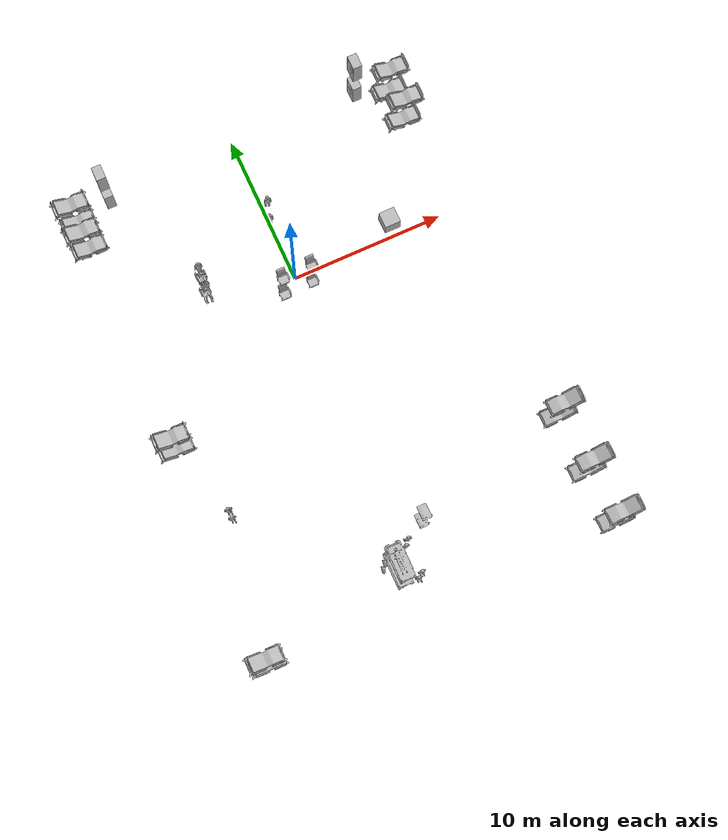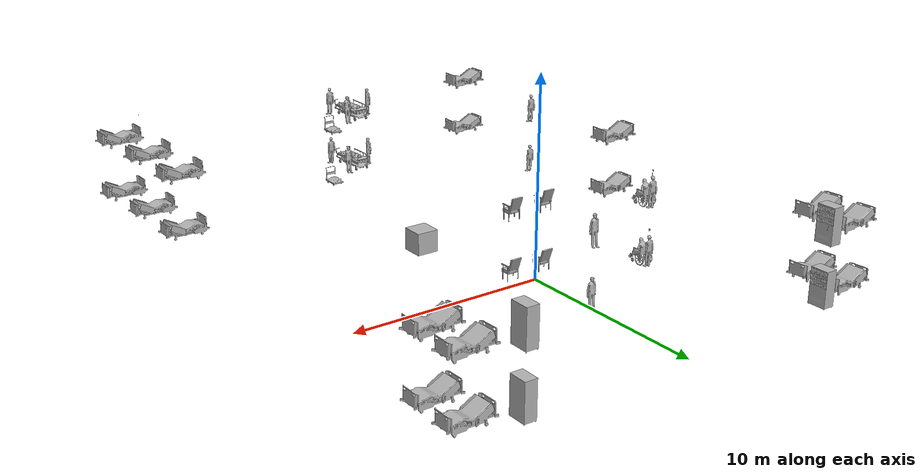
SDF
<sdf version="1.6">
 <world name="world">
  <gravity>0 0 -9.8</gravity>
  <physics default="0" name="default_physics" type="ode">
   <max_step_size>0.001</max_step_size>
   <real_time_factor>1</real_time_factor>
   <real_time_update_rate>1000</real_time_update_rate>
  </physics>
  <model name="CGMClassic_1">
   <include><uri>model://CGMClassic</uri></include>
   <pose>11.1777 -18.4129 0 0 0 -1.5656</pose>
  </model>
  <model name="CGMClassic_2">
   <include><uri>model://CGMClassic</uri></include>
   <pose>11.1179 -14.6493 0 0 0 -1.5656</pose>
  </model>
  <model name="VisitorChair_1">
   <include><uri>model://VisitorChair</uri></include>
   <pose>-1.0052 -0.786961 0 0 -0 0</pose>
  </model>
  <model name="VisitorChair_2">
   <include><uri>model://VisitorChair</uri></include>
   <pose>0.899471 -0.744049 0 0 -0 0</pose>
  </model>
  <model name="OpScrubs_1">
   <include><uri>model://OpScrubs</uri></include>
   <pose>-9.61916 -12.5112 0 0 -0 0</pose>
  </model>
  <model name="OpScrubs_2">
   <include><uri>model://OpScrubs</uri></include>
   <pose>0.054597 4.05849 0 0 -0 3.12413</pose>
  </model>
  <model name="PatientWheelChair_1">
   <include><uri>model://PatientWheelChair</uri></include>
   <pose>-5.46091 1.23577 0 0 -0 0</pose>
  </model>
  <model name="OpScrubs_3">
   <include><uri>model://OpScrubs</uri></include>
   <pose>-5.38513 1.82526 0 0 -0 0</pose>
  </model>
  <model name="CGMClassic_3">
   <include><uri>model://CGMClassic</uri></include>
   <pose>-11.2304 -21.1134 0 0 -0 1.56641</pose>
  </model>
  <model name="CGMClassic_4">
   <include><uri>model://CGMClassic</uri></include>
   <pose>-11.0878 -7.00992 0 0 -0 1.56296</pose>
  </model>
  <model name="CGMClassic_5">
   <include><uri>model://CGMClassic</uri></include>
   <pose>-11.0106 8.9505 -0.008203 0.0004 -0.035019 1.56285</pose>
  </model>
  <model name="CGMClassic_6">
   <include><uri>model://CGMClassic</uri></include>
   <pose>-11.025 7.10335 0 0 -0.035021 1.57427</pose>
  </model>
  <model name="TrolleyBedPatient_1">
   <include><uri>model://TrolleyBedPatient</uri></include>
   <pose>-1.83202 -19.2612 0 0 -0 0</pose>
  </model>
  <model name="OpScrubs_4">
   <include><uri>model://OpScrubs</uri></include>
   <pose>-0.93616 -18.2252 0 0 0 -3.12479</pose>
  </model>
  <model name="OpScrubs_5">
   <include><uri>model://OpScrubs</uri></include>
   <pose>-2.66275 -18.9847 0 0 -0 1.57704</pose>
  </model>
  <model name="VendingMachine_1">
   <include><uri>model://VendingMachine</uri></include>
   <pose>-8.60588 9.57801 4.9e-05 0.000173 0 1.5708</pose>
  </model>
  <model name="VendingMachine_2">
   <include><uri>model://VendingMachine</uri></include>
   <pose>8.57644 9.83528 -1e-06 0 -1e-06 -1.5744</pose>
  </model>
  <model name="CGMClassic_7">
   <include><uri>model://CGMClassic</uri></include>
   <pose>10.6166 9.06291 -0.008203 0.0004 -0.035019 1.56285</pose>
  </model>
  <model name="CGMClassic_8">
   <include><uri>model://CGMClassic</uri></include>
   <pose>10.6006 6.90956 -0.008203 0.0004 -0.035019 1.56285</pose>
  </model>
  <model name="ParkingTrolleyMin_1">
   <include><uri>model://ParkingTrolleyMin</uri></include>
   <pose>0.715846 -17.1496 -0.000111 0 -0 0</pose>
  </model>
  <model name="OpScrubs_6">
   <include><uri>model://OpScrubs</uri></include>
   <pose>-0.947112 -20.3884 0 0 -0 0</pose>
  </model>
  <model name="CGMClassic_9">
   <include><uri>model://CGMClassic</uri></include>
   <pose>11.3613 -21.8867 0 0 0 -1.5656</pose>
  </model>
  <light name="ceiling_light_0" type="spot">
   <pose>-0.194533 13.8034 2.8 0 -0 0</pose>
   <diffuse>0.494118 0.494118 0.494118 1</diffuse>
   <specular>0.0941176 0.0941176 0.0941176 1</specular>
   <direction>0 0 -1</direction>
   <attenuation>
    <range>20</range>
    <constant>0.8</constant>
    <linear>0.1</linear>
    <quadratic>0.001</quadratic>
   </attenuation>
   <cast_shadows>0</cast_shadows>
   <spot><inner_angle>1.0</inner_angle><outer_angle>2.5</outer_angle><falloff>1</falloff></spot>
  </light>
  <light name="ceiling_light_1" type="spot">
   <pose>6.30005 8.9551 2.8 0 -0 0</pose>
   <diffuse>0.494118 0.494118 0.494118 1</diffuse>
   <specular>0.0941176 0.0941176 0.0941176 1</specular>
   <direction>0 0 -1</direction>
   <attenuation>
    <range>20</range>
    <constant>0.8</constant>
    <linear>0.1</linear>
    <quadratic>0.001</quadratic>
   </attenuation>
   <cast_shadows>0</cast_shadows>
   <spot><inner_angle>1.0</inner_angle><outer_angle>2.5</outer_angle><falloff>1</falloff></spot>
  </light>
  <light name="ceiling_light_2" type="spot">
   <pose>0.212387 2.1354 2.8 0 -0 0</pose>
   <diffuse>0.494118 0.494118 0.494118 1</diffuse>
   <specular>0.0941176 0.0941176 0.0941176 1</specular>
   <direction>0 0 -1</direction>
   <attenuation>
    <range>20</range>
    <constant>0.8</constant>
    <linear>0.1</linear>
    <quadratic>0.001</quadratic>
   </attenuation>
   <cast_shadows>0</cast_shadows>
   <spot><inner_angle>1.0</inner_angle><outer_angle>2.5</outer_angle><falloff>1</falloff></spot>
  </light>
  <light name="ceiling_light_3" type="spot">
   <pose>-5.81057 7.18327 2.8 0 -0 0</pose>
   <diffuse>0.494118 0.494118 0.494118 1</diffuse>
   <specular>0.0941176 0.0941176 0.0941176 1</specular>
   <direction>0 0 -1</direction>
   <attenuation>
    <range>20</range>
    <constant>0.8</constant>
    <linear>0.1</linear>
    <quadratic>0.001</quadratic>
   </attenuation>
   <cast_shadows>0</cast_shadows>
   <spot><inner_angle>1.0</inner_angle><outer_angle>2.5</outer_angle><falloff>1</falloff></spot>
  </light>
  <light name="ceiling_light_4" type="spot">
   <pose>-4.54396 -3.67312 2.8 0 -0 0</pose>
   <diffuse>0.494118 0.494118 0.494118 1</diffuse>
   <specular>0.0941176 0.0941176 0.0941176 1</specular>
   <direction>0 0 -1</direction>
   <attenuation>
    <range>20</range>
    <constant>0.8</constant>
    <linear>0.1</linear>
    <quadratic>0.001</quadratic>
   </attenuation>
   <cast_shadows>0</cast_shadows>
   <spot><inner_angle>1.0</inner_angle><outer_angle>2.5</outer_angle><falloff>1</falloff></spot>
  </light>
  <light name="ceiling_light_5" type="spot">
   <pose>-4.37087 -14.4782 2.8 0 -0 0</pose>
   <diffuse>0.494118 0.494118 0.494118 1</diffuse>
   <specular>0.0941176 0.0941176 0.0941176 1</specular>
   <direction>0 0 -1</direction>
   <attenuation>
    <range>20</range>
    <constant>0.8</constant>
    <linear>0.1</linear>
    <quadratic>0.001</quadratic>
   </attenuation>
   <cast_shadows>0</cast_shadows>
   <spot><inner_angle>1.0</inner_angle><outer_angle>2.5</outer_angle><falloff>1</falloff></spot>
  </light>
  <light name="ceiling_light_6" type="spot">
   <pose>-4.39457 -24.5382 2.8 0 -0 0</pose>
   <diffuse>0.494118 0.494118 0.494118 1</diffuse>
   <specular>0.0941176 0.0941176 0.0941176 1</specular>
   <direction>0 0 -1</direction>
   <attenuation>
    <range>20</range>
    <constant>0.8</constant>
    <linear>0.1</linear>
    <quadratic>0.001</quadratic>
   </attenuation>
   <cast_shadows>0</cast_shadows>
   <spot><inner_angle>1.0</inner_angle><outer_angle>2.5</outer_angle><falloff>1</falloff></spot>
  </light>
  <light name="ceiling_light_7" type="spot">
   <pose>-4.89858 -33.5301 2.8 0 -0 0</pose>
   <diffuse>0.494118 0.494118 0.494118 1</diffuse>
   <specular>0.0941176 0.0941176 0.0941176 1</specular>
   <direction>0 0 -1</direction>
   <attenuation>
    <range>20</range>
    <constant>0.8</constant>
    <linear>0.1</linear>
    <quadratic>0.001</quadratic>
   </attenuation>
   <cast_shadows>0</cast_shadows>
   <spot><inner_angle>1.0</inner_angle><outer_angle>2.5</outer_angle><falloff>1</falloff></spot>
  </light>
  <light name="ceiling_light_8" type="spot">
   <pose>4.63967 -24.4587 2.8 0 -0 0</pose>
   <diffuse>0.494118 0.494118 0.494118 1</diffuse>
   <specular>0.0941176 0.0941176 0.0941176 1</specular>
   <direction>0 0 -1</direction>
   <attenuation>
    <range>20</range>
    <constant>0.8</constant>
    <linear>0.1</linear>
    <quadratic>0.001</quadratic>
   </attenuation>
   <cast_shadows>0</cast_shadows>
   <spot><inner_angle>1.0</inner_angle><outer_angle>2.5</outer_angle><falloff>1</falloff></spot>
  </light>
  <light name="ceiling_light_9" type="spot">
   <pose>4.92633 -14.3923 2.8 0 -0 0</pose>
   <diffuse>0.494118 0.494118 0.494118 1</diffuse>
   <specular>0.0941176 0.0941176 0.0941176 1</specular>
   <direction>0 0 -1</direction>
   <attenuation>
    <range>20</range>
    <constant>0.8</constant>
    <linear>0.1</linear>
    <quadratic>0.001</quadratic>
   </attenuation>
   <cast_shadows>0</cast_shadows>
   <spot><inner_angle>1.0</inner_angle><outer_angle>2.5</outer_angle><falloff>1</falloff></spot>
  </light>
  <light name="ceiling_light_10" type="spot">
   <pose>4.7009 -3.77715 2.8 0 -0 0</pose>
   <diffuse>0.494118 0.494118 0.494118 1</diffuse>
   <specular>0.0941176 0.0941176 0.0941176 1</specular>
   <direction>0 0 -1</direction>
   <attenuation>
    <range>20</range>
    <constant>0.8</constant>
    <linear>0.1</linear>
    <quadratic>0.001</quadratic>
   </attenuation>
   <cast_shadows>0</cast_shadows>
   <spot><inner_angle>1.0</inner_angle><outer_angle>2.5</outer_angle><falloff>1</falloff></spot>
  </light>
  <light name="ceiling_light_11" type="spot">
   <pose>-9.02467 14.516 2.8 0 -0 0</pose>
   <diffuse>0.494118 0.494118 0.494118 1</diffuse>
   <specular>0.0941176 0.0941176 0.0941176 1</specular>
   <direction>0 0 -1</direction>
   <attenuation>
    <range>20</range>
    <constant>0.8</constant>
    <linear>0.1</linear>
    <quadratic>0.001</quadratic>
   </attenuation>
   <cast_shadows>0</cast_shadows>
   <spot><inner_angle>1.0</inner_angle><outer_angle>2.5</outer_angle><falloff>1</falloff></spot>
  </light>
  <light name="ceiling_light_12" type="spot">
   <pose>9.12495 14.4234 2.8 0 -0 0</pose>
   <diffuse>0.494118 0.494118 0.494118 1</diffuse>
   <specular>0.0941176 0.0941176 0.0941176 1</specular>
   <direction>0 0 -1</direction>
   <attenuation>
    <range>20</range>
    <constant>0.8</constant>
    <linear>0.1</linear>
    <quadratic>0.001</quadratic>
   </attenuation>
   <cast_shadows>0</cast_shadows>
   <spot><inner_angle>1.0</inner_angle><outer_angle>2.5</outer_angle><falloff>1</falloff></spot>
  </light>
  <light name="ceiling_light_13" type="spot">
   <pose>9.49822 -5.56304 2.8 0 -0 0</pose>
   <diffuse>0.494118 0.494118 0.494118 1</diffuse>
   <specular>0.0941176 0.0941176 0.0941176 1</specular>
   <direction>0 0 -1</direction>
   <attenuation>
    <range>20</range>
    <constant>0.8</constant>
    <linear>0.1</linear>
    <quadratic>0.001</quadratic>
   </attenuation>
   <cast_shadows>0</cast_shadows>
   <spot><inner_angle>1.0</inner_angle><outer_angle>2.5</outer_angle><falloff>1</falloff></spot>
  </light>
  <light name="ceiling_light_14" type="spot">
   <pose>-9.46806 -4.74662 2.8 0 -0 0</pose>
   <diffuse>0.494118 0.494118 0.494118 1</diffuse>
   <specular>0.0941176 0.0941176 0.0941176 1</specular>
   <direction>0 0 -1</direction>
   <attenuation>
    <range>20</range>
    <constant>0.8</constant>
    <linear>0.1</linear>
    <quadratic>0.001</quadratic>
   </attenuation>
   <cast_shadows>0</cast_shadows>
   <spot><inner_angle>1.0</inner_angle><outer_angle>2.5</outer_angle><falloff>1</falloff></spot>
  </light>
  <light name="ceiling_light_15" type="spot">
   <pose>-9.46885 -19.0778 2.8 0 -0 0</pose>
   <diffuse>0.494118 0.494118 0.494118 1</diffuse>
   <specular>0.0901961 0.0901961 0.0901961 1</specular>
   <direction>0 0 -1</direction>
   <attenuation>
    <range>20</range>
    <constant>0.8</constant>
    <linear>0.1</linear>
    <quadratic>0.001</quadratic>
   </attenuation>
   <cast_shadows>0</cast_shadows>
   <spot><inner_angle>1.0</inner_angle><outer_angle>2.5</outer_angle><falloff>1</falloff></spot>
  </light>
  <light name="ceiling_light_16" type="spot">
   <pose>-9.42207 -28.0708 2.8 0 -0 0</pose>
   <diffuse>0.494118 0.494118 0.494118 1</diffuse>
   <specular>0.0901961 0.0901961 0.0901961 1</specular>
   <direction>0 0 -1</direction>
   <attenuation>
    <range>20</range>
    <constant>0.8</constant>
    <linear>0.1</linear>
    <quadratic>0.001</quadratic>
   </attenuation>
   <cast_shadows>0</cast_shadows>
   <spot><inner_angle>1.0</inner_angle><outer_angle>2.5</outer_angle><falloff>1</falloff></spot>
  </light>
  <light name="ceiling_light_17" type="spot">
   <pose>1.66302 -11.4026 2.8 0 -0 0</pose>
   <diffuse>0.494118 0.494118 0.494118 1</diffuse>
   <specular>0.0901961 0.0901961 0.0901961 1</specular>
   <direction>0 0 -1</direction>
   <attenuation>
    <range>20</range>
    <constant>0.8</constant>
    <linear>0.1</linear>
    <quadratic>0.001</quadratic>
   </attenuation>
   <cast_shadows>0</cast_shadows>
   <spot><inner_angle>1.0</inner_angle><outer_angle>2.5</outer_angle><falloff>1</falloff></spot>
  </light>
  <light name="ceiling_light_18" type="spot">
   <pose>-1.64839 -19.4418 2.8 0 -0 0</pose>
   <diffuse>0.494118 0.494118 0.494118 1</diffuse>
   <specular>0.0901961 0.0901961 0.0901961 1</specular>
   <direction>0 0 -1</direction>
   <attenuation>
    <range>20</range>
    <constant>0.8</constant>
    <linear>0.1</linear>
    <quadratic>0.001</quadratic>
   </attenuation>
   <cast_shadows>0</cast_shadows>
   <spot><inner_angle>1.0</inner_angle><outer_angle>2.5</outer_angle><falloff>1</falloff></spot>
  </light>
  <light name="ceiling_light_19" type="spot">
   <pose>1.85793 -19.3856 2.8 0 -0 0</pose>
   <diffuse>0.494118 0.494118 0.494118 1</diffuse>
   <specular>0.0901961 0.0901961 0.0901961 1</specular>
   <direction>0 0 -1</direction>
   <attenuation>
    <range>20</range>
    <constant>0.8</constant>
    <linear>0.1</linear>
    <quadratic>0.001</quadratic>
   </attenuation>
   <cast_shadows>0</cast_shadows>
   <spot><inner_angle>1.0</inner_angle><outer_angle>2.5</outer_angle><falloff>1</falloff></spot>
  </light>
  <light name="ceiling_light_20" type="spot">
   <pose>-3.74086 -4.44142 2.8 0 -0 0</pose>
   <diffuse>0.494118 0.494118 0.494118 1</diffuse>
   <specular>0.0901961 0.0901961 0.0901961 1</specular>
   <direction>0 0 -1</direction>
   <attenuation>
    <range>20</range>
    <constant>0.8</constant>
    <linear>0.1</linear>
    <quadratic>0.001</quadratic>
   </attenuation>
   <cast_shadows>0</cast_shadows>
   <spot><inner_angle>1.0</inner_angle><outer_angle>2.5</outer_angle><falloff>1</falloff></spot>
  </light>
  <light name="ceiling_light_21" type="spot">
   <pose>-1.7167 -11.3151 2.8 0 -0 0</pose>
   <diffuse>0.494118 0.494118 0.494118 1</diffuse>
   <specular>0.0901961 0.0901961 0.0901961 1</specular>
   <direction>0 0 -1</direction>
   <attenuation>
    <range>20</range>
    <constant>0.8</constant>
    <linear>0.1</linear>
    <quadratic>0.001</quadratic>
   </attenuation>
   <cast_shadows>0</cast_shadows>
   <spot><inner_angle>1.0</inner_angle><outer_angle>2.5</outer_angle><falloff>1</falloff></spot>
  </light>
  <light name="ceiling_light_22" type="spot">
   <pose>-9.60933 -14.3792 2.8 0 -0 0</pose>
   <diffuse>0.494118 0.494118 0.494118 1</diffuse>
   <specular>0.0901961 0.0901961 0.0901961 1</specular>
   <direction>0 0 -1</direction>
   <attenuation>
    <range>20</range>
    <constant>0.8</constant>
    <linear>0.1</linear>
    <quadratic>0.001</quadratic>
   </attenuation>
   <cast_shadows>0</cast_shadows>
   <spot><inner_angle>1.0</inner_angle><outer_angle>2.5</outer_angle><falloff>1</falloff></spot>
  </light>
  <light name="ceiling_light_23" type="spot">
   <pose>-8.89647 0.199867 2.8 0 -0 0</pose>
   <diffuse>0.494118 0.494118 0.494118 1</diffuse>
   <specular>0.0901961 0.0901961 0.0901961 1</specular>
   <direction>0 0 -1</direction>
   <attenuation>
    <range>20</range>
    <constant>0.8</constant>
    <linear>0.1</linear>
    <quadratic>0.001</quadratic>
   </attenuation>
   <cast_shadows>0</cast_shadows>
   <spot><inner_angle>1.0</inner_angle><outer_angle>2.5</outer_angle><falloff>1</falloff></spot>
  </light>
  <light name="ceiling_light_24" type="spot">
   <pose>8.80325 1.99908 2.8 0 -0 0</pose>
   <diffuse>0.494118 0.494118 0.494118 1</diffuse>
   <specular>0.0901961 0.0901961 0.0901961 1</specular>
   <direction>0 0 -1</direction>
   <attenuation>
    <range>20</range>
    <constant>0.8</constant>
    <linear>0.1</linear>
    <quadratic>0.001</quadratic>
   </attenuation>
   <cast_shadows>0</cast_shadows>
   <spot><inner_angle>1.0</inner_angle><outer_angle>2.5</outer_angle><falloff>1</falloff></spot>
  </light>
  <light name="ceiling_light_25" type="spot">
   <pose>10.6153 10.2443 2.8 0 -0 0</pose>
   <diffuse>0.494118 0.494118 0.494118 1</diffuse>
   <specular>0.0941176 0.0941176 0.0941176 1</specular>
   <direction>0 0 -1</direction>
   <attenuation>
    <range>20</range>
    <constant>0.8</constant>
    <linear>0.1</linear>
    <quadratic>0.001</quadratic>
   </attenuation>
   <cast_shadows>0</cast_shadows>
   <spot><inner_angle>1.0</inner_angle><outer_angle>2.5</outer_angle><falloff>1</falloff></spot>
  </light>
  <light name="ceiling_light_26" type="spot">
   <pose>10.7071 5.95677 2.8 0 -0 0</pose>
   <diffuse>0.494118 0.494118 0.494118 1</diffuse>
   <specular>0.0941176 0.0941176 0.0941176 1</specular>
   <direction>0 0 -1</direction>
   <attenuation>
    <range>20</range>
    <constant>0.8</constant>
    <linear>0.1</linear>
    <quadratic>0.001</quadratic>
   </attenuation>
   <cast_shadows>0</cast_shadows>
   <spot><inner_angle>1.0</inner_angle><outer_angle>2.5</outer_angle><falloff>1</falloff></spot>
  </light>
  <light name="ceiling_light_27" type="spot">
   <pose>-10.6266 10.4097 2.8 0 -0 0</pose>
   <diffuse>0.494118 0.494118 0.494118 1</diffuse>
   <specular>0.0941176 0.0941176 0.0941176 1</specular>
   <direction>0 0 -1</direction>
   <attenuation>
    <range>20</range>
    <constant>0.8</constant>
    <linear>0.1</linear>
    <quadratic>0.001</quadratic>
   </attenuation>
   <cast_shadows>0</cast_shadows>
   <spot><inner_angle>1.0</inner_angle><outer_angle>2.5</outer_angle><falloff>1</falloff></spot>
  </light>
  <light name="ceiling_light_28" type="spot">
   <pose>-10.7712 6.05323 2.8 0 -0 0</pose>
   <diffuse>0.494118 0.494118 0.494118 1</diffuse>
   <specular>0.0941176 0.0941176 0.0941176 1</specular>
   <direction>0 0 -1</direction>
   <attenuation>
    <range>20</range>
    <constant>0.8</constant>
    <linear>0.1</linear>
    <quadratic>0.001</quadratic>
   </attenuation>
   <cast_shadows>0</cast_shadows>
   <spot><inner_angle>1.0</inner_angle><outer_angle>2.5</outer_angle><falloff>1</falloff></spot>
  </light>
  <light name="ceiling_light_29" type="spot">
   <pose>-9.64585 -30.5079 2.8 0 -0 0</pose>
   <diffuse>0.494118 0.494118 0.494118 1</diffuse>
   <specular>0.0941176 0.0941176 0.0941176 1</specular>
   <direction>0 0 -1</direction>
   <attenuation>
    <range>20</range>
    <constant>0.8</constant>
    <linear>0.1</linear>
    <quadratic>0.001</quadratic>
   </attenuation>
   <cast_shadows>0</cast_shadows>
   <spot><inner_angle>1.0</inner_angle><outer_angle>2.5</outer_angle><falloff>1</falloff></spot>
  </light>
  <light name="ceiling_light_30" type="spot">
   <pose>-11.9169 -24.6051 2.8 0 -0 0</pose>
   <diffuse>0.494118 0.494118 0.494118 1</diffuse>
   <specular>0.0941176 0.0941176 0.0941176 1</specular>
   <direction>0 0 -1</direction>
   <attenuation>
    <range>20</range>
    <constant>0.8</constant>
    <linear>0.1</linear>
    <quadratic>0.001</quadratic>
   </attenuation>
   <cast_shadows>0</cast_shadows>
   <spot><inner_angle>1.0</inner_angle><outer_angle>2.5</outer_angle><falloff>1</falloff></spot>
  </light>
  <light name="ceiling_light_31" type="spot">
   <pose>-4.29701 11.4852 2.8 0 -0 0</pose>
   <diffuse>0.494118 0.494118 0.494118 1</diffuse>
   <specular>0.0901961 0.0901961 0.0901961 1</specular>
   <direction>0 0 -1</direction>
   <attenuation>
    <range>20</range>
    <constant>0.8</constant>
    <linear>0.1</linear>
    <quadratic>0.001</quadratic>
   </attenuation>
   <cast_shadows>0</cast_shadows>
   <spot><inner_angle>1.0</inner_angle><outer_angle>2.5</outer_angle><falloff>1</falloff></spot>
  </light>
  <light name="ceiling_light_32" type="spot">
   <pose>3.41329 12.0406 2.8 0 -0 0</pose>
   <diffuse>0.494118 0.494118 0.494118 1</diffuse>
   <specular>0.0901961 0.0901961 0.0901961 1</specular>
   <direction>0 0 -1</direction>
   <attenuation>
    <range>20</range>
    <constant>0.8</constant>
    <linear>0.1</linear>
    <quadratic>0.001</quadratic>
   </attenuation>
   <cast_shadows>0</cast_shadows>
   <spot><inner_angle>1.0</inner_angle><outer_angle>2.5</outer_angle><falloff>1</falloff></spot>
  </light>
  <light name="ceiling_light_33" type="spot">
   <pose>-0.181496 7.28878 2.8 0 -0 0</pose>
   <diffuse>0.494118 0.494118 0.494118 1</diffuse>
   <specular>0.0901961 0.0901961 0.0901961 1</specular>
   <direction>0 0 -1</direction>
   <attenuation>
    <range>20</range>
    <constant>0.8</constant>
    <linear>0.1</linear>
    <quadratic>0.001</quadratic>
   </attenuation>
   <cast_shadows>0</cast_shadows>
   <spot><inner_angle>1.0</inner_angle><outer_angle>2.5</outer_angle><falloff>1</falloff></spot>
  </light>
  <model name="floor_1_CGMClassic_1">
   <include><uri>model://CGMClassic</uri></include>
   <pose>11.1777 -18.4129 3.0 0 0 -1.5656</pose>
  </model>
  <model name="floor_1_CGMClassic_2">
   <include><uri>model://CGMClassic</uri></include>
   <pose>11.1179 -14.6493 3.0 0 0 -1.5656</pose>
  </model>
  <model name="floor_1_VisitorChair_1">
   <include><uri>model://VisitorChair</uri></include>
   <pose>-1.0052 -0.786961 3.0 0 -0 0</pose>
  </model>
  <model name="floor_1_VisitorChair_2">
   <include><uri>model://VisitorChair</uri></include>
   <pose>0.899471 -0.744049 3.0 0 -0 0</pose>
  </model>
  <model name="floor_1_OpScrubs_1">
   <include><uri>model://OpScrubs</uri></include>
   <pose>-9.61916 -12.5112 3.0 0 -0 0</pose>
  </model>
  <model name="floor_1_OpScrubs_2">
   <include><uri>model://OpScrubs</uri></include>
   <pose>0.054597 4.05849 3.0 0 -0 3.12413</pose>
  </model>
  <model name="floor_1_PatientWheelChair_1">
   <include><uri>model://PatientWheelChair</uri></include>
   <pose>-5.46091 1.23577 3.0 0 -0 0</pose>
  </model>
  <model name="floor_1_OpScrubs_3">
   <include><uri>model://OpScrubs</uri></include>
   <pose>-5.38513 1.82526 3.0 0 -0 0</pose>
  </model>
  <model name="floor_1_CGMClassic_3">
   <include><uri>model://CGMClassic</uri></include>
   <pose>-11.2304 -21.1134 3.0 0 -0 1.56641</pose>
  </model>
  <model name="floor_1_CGMClassic_4">
   <include><uri>model://CGMClassic</uri></include>
   <pose>-11.0878 -7.00992 3.0 0 -0 1.56296</pose>
  </model>
  <model name="floor_1_CGMClassic_5">
   <include><uri>model://CGMClassic</uri></include>
   <pose>-11.0106 8.9505 2.991797 0.0004 -0.035019 1.56285</pose>
  </model>
  <model name="floor_1_CGMClassic_6">
   <include><uri>model://CGMClassic</uri></include>
   <pose>-11.025 7.10335 3.0 0 -0.035021 1.57427</pose>
  </model>
  <model name="floor_1_TrolleyBedPatient_1">
   <include><uri>model://TrolleyBedPatient</uri></include>
   <pose>-1.83202 -19.2612 3.0 0 -0 0</pose>
  </model>
  <model name="floor_1_OpScrubs_4">
   <include><uri>model://OpScrubs</uri></include>
   <pose>-0.93616 -18.2252 3.0 0 0 -3.12479</pose>
  </model>
  <model name="floor_1_OpScrubs_5">
   <include><uri>model://OpScrubs</uri></include>
   <pose>-2.66275 -18.9847 3.0 0 -0 1.57704</pose>
  </model>
  <model name="floor_1_VendingMachine_1">
   <include><uri>model://VendingMachine</uri></include>
   <pose>-8.60588 9.57801 3.000049 0.000173 0 1.5708</pose>
  </model>
  <model name="floor_1_VendingMachine_2">
   <include><uri>model://VendingMachine</uri></include>
   <pose>8.57644 9.83528 2.999999 0 -1e-06 -1.5744</pose>
  </model>
  <model name="floor_1_CGMClassic_7">
   <include><uri>model://CGMClassic</uri></include>
   <pose>10.6166 9.06291 2.991797 0.0004 -0.035019 1.56285</pose>
  </model>
  <model name="floor_1_CGMClassic_8">
   <include><uri>model://CGMClassic</uri></include>
   <pose>10.6006 6.90956 2.991797 0.0004 -0.035019 1.56285</pose>
  </model>
  <model name="floor_1_ParkingTrolleyMin_1">
   <include><uri>model://ParkingTrolleyMin</uri></include>
   <pose>0.715846 -17.1496 2.999889 0 -0 0</pose>
  </model>
  <model name="floor_1_OpScrubs_6">
   <include><uri>model://OpScrubs</uri></include>
   <pose>-0.947112 -20.3884 3.0 0 -0 0</pose>
  </model>
  <model name="floor_1_CGMClassic_9">
   <include><uri>model://CGMClassic</uri></include>
   <pose>11.3613 -21.8867 3.0 0 0 -1.5656</pose>
  </model>
  <light name="floor_1_ceiling_light_0" type="spot">
   <pose>-0.194533 13.8034 5.8 0 -0 0</pose>
   <diffuse>0.494118 0.494118 0.494118 1</diffuse>
   <specular>0.0941176 0.0941176 0.0941176 1</specular>
   <direction>0 0 -1</direction>
   <attenuation>
    <range>20</range>
    <constant>0.8</constant>
    <linear>0.1</linear>
    <quadratic>0.001</quadratic>
   </attenuation>
   <cast_shadows>0</cast_shadows>
   <spot><inner_angle>1.0</inner_angle><outer_angle>2.5</outer_angle><falloff>1</falloff></spot>
  </light>
  <light name="floor_1_ceiling_light_1" type="spot">
   <pose>6.30005 8.9551 5.8 0 -0 0</pose>
   <diffuse>0.494118 0.494118 0.494118 1</diffuse>
   <specular>0.0941176 0.0941176 0.0941176 1</specular>
   <direction>0 0 -1</direction>
   <attenuation>
    <range>20</range>
    <constant>0.8</constant>
    <linear>0.1</linear>
    <quadratic>0.001</quadratic>
   </attenuation>
   <cast_shadows>0</cast_shadows>
   <spot><inner_angle>1.0</inner_angle><outer_angle>2.5</outer_angle><falloff>1</falloff></spot>
  </light>
  <light name="floor_1_ceiling_light_2" type="spot">
   <pose>0.212387 2.1354 5.8 0 -0 0</pose>
   <diffuse>0.494118 0.494118 0.494118 1</diffuse>
   <specular>0.0941176 0.0941176 0.0941176 1</specular>
   <direction>0 0 -1</direction>
   <attenuation>
    <range>20</range>
    <constant>0.8</constant>
    <linear>0.1</linear>
    <quadratic>0.001</quadratic>
   </attenuation>
   <cast_shadows>0</cast_shadows>
   <spot><inner_angle>1.0</inner_angle><outer_angle>2.5</outer_angle><falloff>1</falloff></spot>
  </light>
  <light name="floor_1_ceiling_light_3" type="spot">
   <pose>-5.81057 7.18327 5.8 0 -0 0</pose>
   <diffuse>0.494118 0.494118 0.494118 1</diffuse>
   <specular>0.0941176 0.0941176 0.0941176 1</specular>
   <direction>0 0 -1</direction>
   <attenuation>
    <range>20</range>
    <constant>0.8</constant>
    <linear>0.1</linear>
    <quadratic>0.001</quadratic>
   </attenuation>
   <cast_shadows>0</cast_shadows>
   <spot><inner_angle>1.0</inner_angle><outer_angle>2.5</outer_angle><falloff>1</falloff></spot>
  </light>
  <light name="floor_1_ceiling_light_4" type="spot">
   <pose>-4.54396 -3.67312 5.8 0 -0 0</pose>
   <diffuse>0.494118 0.494118 0.494118 1</diffuse>
   <specular>0.0941176 0.0941176 0.0941176 1</specular>
   <direction>0 0 -1</direction>
   <attenuation>
    <range>20</range>
    <constant>0.8</constant>
    <linear>0.1</linear>
    <quadratic>0.001</quadratic>
   </attenuation>
   <cast_shadows>0</cast_shadows>
   <spot><inner_angle>1.0</inner_angle><outer_angle>2.5</outer_angle><falloff>1</falloff></spot>
  </light>
  <light name="floor_1_ceiling_light_5" type="spot">
   <pose>-4.37087 -14.4782 5.8 0 -0 0</pose>
   <diffuse>0.494118 0.494118 0.494118 1</diffuse>
   <specular>0.0941176 0.0941176 0.0941176 1</specular>
   <direction>0 0 -1</direction>
   <attenuation>
    <range>20</range>
    <constant>0.8</constant>
    <linear>0.1</linear>
    <quadratic>0.001</quadratic>
   </attenuation>
   <cast_shadows>0</cast_shadows>
   <spot><inner_angle>1.0</inner_angle><outer_angle>2.5</outer_angle><falloff>1</falloff></spot>
  </light>
  <light name="floor_1_ceiling_light_6" type="spot">
   <pose>-4.39457 -24.5382 5.8 0 -0 0</pose>
   <diffuse>0.494118 0.494118 0.494118 1</diffuse>
   <specular>0.0941176 0.0941176 0.0941176 1</specular>
   <direction>0 0 -1</direction>
   <attenuation>
    <range>20</range>
    <constant>0.8</constant>
    <linear>0.1</linear>
    <quadratic>0.001</quadratic>
   </attenuation>
   <cast_shadows>0</cast_shadows>
   <spot><inner_angle>1.0</inner_angle><outer_angle>2.5</outer_angle><falloff>1</falloff></spot>
  </light>
  <light name="floor_1_ceiling_light_7" type="spot">
   <pose>-4.89858 -33.5301 5.8 0 -0 0</pose>
   <diffuse>0.494118 0.494118 0.494118 1</diffuse>
   <specular>0.0941176 0.0941176 0.0941176 1</specular>
   <direction>0 0 -1</direction>
   <attenuation>
    <range>20</range>
    <constant>0.8</constant>
    <linear>0.1</linear>
    <quadratic>0.001</quadratic>
   </attenuation>
   <cast_shadows>0</cast_shadows>
   <spot><inner_angle>1.0</inner_angle><outer_angle>2.5</outer_angle><falloff>1</falloff></spot>
  </light>
  <light name="floor_1_ceiling_light_8" type="spot">
   <pose>4.63967 -24.4587 5.8 0 -0 0</pose>
   <diffuse>0.494118 0.494118 0.494118 1</diffuse>
   <specular>0.0941176 0.0941176 0.0941176 1</specular>
   <direction>0 0 -1</direction>
   <attenuation>
    <range>20</range>
    <constant>0.8</constant>
    <linear>0.1</linear>
    <quadratic>0.001</quadratic>
   </attenuation>
   <cast_shadows>0</cast_shadows>
   <spot><inner_angle>1.0</inner_angle><outer_angle>2.5</outer_angle><falloff>1</falloff></spot>
  </light>
  <light name="floor_1_ceiling_light_9" type="spot">
   <pose>4.92633 -14.3923 5.8 0 -0 0</pose>
   <diffuse>0.494118 0.494118 0.494118 1</diffuse>
   <specular>0.0941176 0.0941176 0.0941176 1</specular>
   <direction>0 0 -1</direction>
   <attenuation>
    <range>20</range>
    <constant>0.8</constant>
    <linear>0.1</linear>
    <quadratic>0.001</quadratic>
   </attenuation>
   <cast_shadows>0</cast_shadows>
   <spot><inner_angle>1.0</inner_angle><outer_angle>2.5</outer_angle><falloff>1</falloff></spot>
  </light>
  <light name="floor_1_ceiling_light_10" type="spot">
   <pose>4.7009 -3.77715 5.8 0 -0 0</pose>
   <diffuse>0.494118 0.494118 0.494118 1</diffuse>
   <specular>0.0941176 0.0941176 0.0941176 1</specular>
   <direction>0 0 -1</direction>
   <attenuation>
    <range>20</range>
    <constant>0.8</constant>
    <linear>0.1</linear>
    <quadratic>0.001</quadratic>
   </attenuation>
   <cast_shadows>0</cast_shadows>
   <spot><inner_angle>1.0</inner_angle><outer_angle>2.5</outer_angle><falloff>1</falloff></spot>
  </light>
  <light name="floor_1_ceiling_light_11" type="spot">
   <pose>-9.02467 14.516 5.8 0 -0 0</pose>
   <diffuse>0.494118 0.494118 0.494118 1</diffuse>
   <specular>0.0941176 0.0941176 0.0941176 1</specular>
   <direction>0 0 -1</direction>
   <attenuation>
    <range>20</range>
    <constant>0.8</constant>
    <linear>0.1</linear>
    <quadratic>0.001</quadratic>
   </attenuation>
   <cast_shadows>0</cast_shadows>
   <spot><inner_angle>1.0</inner_angle><outer_angle>2.5</outer_angle><falloff>1</falloff></spot>
  </light>
  <light name="floor_1_ceiling_light_12" type="spot">
   <pose>9.12495 14.4234 5.8 0 -0 0</pose>
   <diffuse>0.494118 0.494118 0.494118 1</diffuse>
   <specular>0.0941176 0.0941176 0.0941176 1</specular>
   <direction>0 0 -1</direction>
   <attenuation>
    <range>20</range>
    <constant>0.8</constant>
    <linear>0.1</linear>
    <quadratic>0.001</quadratic>
   </attenuation>
   <cast_shadows>0</cast_shadows>
   <spot><inner_angle>1.0</inner_angle><outer_angle>2.5</outer_angle><falloff>1</falloff></spot>
  </light>
  <light name="floor_1_ceiling_light_13" type="spot">
   <pose>9.49822 -5.56304 5.8 0 -0 0</pose>
   <diffuse>0.494118 0.494118 0.494118 1</diffuse>
   <specular>0.0941176 0.0941176 0.0941176 1</specular>
   <direction>0 0 -1</direction>
   <attenuation>
    <range>20</range>
    <constant>0.8</constant>
    <linear>0.1</linear>
    <quadratic>0.001</quadratic>
   </attenuation>
   <cast_shadows>0</cast_shadows>
   <spot><inner_angle>1.0</inner_angle><outer_angle>2.5</outer_angle><falloff>1</falloff></spot>
  </light>
  <light name="floor_1_ceiling_light_14" type="spot">
   <pose>-9.46806 -4.74662 5.8 0 -0 0</pose>
   <diffuse>0.494118 0.494118 0.494118 1</diffuse>
   <specular>0.0941176 0.0941176 0.0941176 1</specular>
   <direction>0 0 -1</direction>
   <attenuation>
    <range>20</range>
    <constant>0.8</constant>
    <linear>0.1</linear>
    <quadratic>0.001</quadratic>
   </attenuation>
   <cast_shadows>0</cast_shadows>
   <spot><inner_angle>1.0</inner_angle><outer_angle>2.5</outer_angle><falloff>1</falloff></spot>
  </light>
  <light name="floor_1_ceiling_light_15" type="spot">
   <pose>-9.46885 -19.0778 5.8 0 -0 0</pose>
   <diffuse>0.494118 0.494118 0.494118 1</diffuse>
   <specular>0.0901961 0.0901961 0.0901961 1</specular>
   <direction>0 0 -1</direction>
   <attenuation>
    <range>20</range>
    <constant>0.8</constant>
    <linear>0.1</linear>
    <quadratic>0.001</quadratic>
   </attenuation>
   <cast_shadows>0</cast_shadows>
   <spot><inner_angle>1.0</inner_angle><outer_angle>2.5</outer_angle><falloff>1</falloff></spot>
  </light>
  <light name="floor_1_ceiling_light_16" type="spot">
   <pose>-9.42207 -28.0708 5.8 0 -0 0</pose>
   <diffuse>0.494118 0.494118 0.494118 1</diffuse>
   <specular>0.0901961 0.0901961 0.0901961 1</specular>
   <direction>0 0 -1</direction>
   <attenuation>
    <range>20</range>
    <constant>0.8</constant>
    <linear>0.1</linear>
    <quadratic>0.001</quadratic>
   </attenuation>
   <cast_shadows>0</cast_shadows>
   <spot><inner_angle>1.0</inner_angle><outer_angle>2.5</outer_angle><falloff>1</falloff></spot>
  </light>
  <light name="floor_1_ceiling_light_17" type="spot">
   <pose>1.66302 -11.4026 5.8 0 -0 0</pose>
   <diffuse>0.494118 0.494118 0.494118 1</diffuse>
   <specular>0.0901961 0.0901961 0.0901961 1</specular>
   <direction>0 0 -1</direction>
   <attenuation>
    <range>20</range>
    <constant>0.8</constant>
    <linear>0.1</linear>
    <quadratic>0.001</quadratic>
   </attenuation>
   <cast_shadows>0</cast_shadows>
   <spot><inner_angle>1.0</inner_angle><outer_angle>2.5</outer_angle><falloff>1</falloff></spot>
  </light>
  <light name="floor_1_ceiling_light_18" type="spot">
   <pose>-1.64839 -19.4418 5.8 0 -0 0</pose>
   <diffuse>0.494118 0.494118 0.494118 1</diffuse>
   <specular>0.0901961 0.0901961 0.0901961 1</specular>
   <direction>0 0 -1</direction>
   <attenuation>
    <range>20</range>
    <constant>0.8</constant>
    <linear>0.1</linear>
    <quadratic>0.001</quadratic>
   </attenuation>
   <cast_shadows>0</cast_shadows>
   <spot><inner_angle>1.0</inner_angle><outer_angle>2.5</outer_angle><falloff>1</falloff></spot>
  </light>
  <light name="floor_1_ceiling_light_19" type="spot">
   <pose>1.85793 -19.3856 5.8 0 -0 0</pose>
   <diffuse>0.494118 0.494118 0.494118 1</diffuse>
   <specular>0.0901961 0.0901961 0.0901961 1</specular>
   <direction>0 0 -1</direction>
   <attenuation>
    <range>20</range>
    <constant>0.8</constant>
    <linear>0.1</linear>
    <quadratic>0.001</quadratic>
   </attenuation>
   <cast_shadows>0</cast_shadows>
   <spot><inner_angle>1.0</inner_angle><outer_angle>2.5</outer_angle><falloff>1</falloff></spot>
  </light>
  <light name="floor_1_ceiling_light_20" type="spot">
   <pose>-3.74086 -4.44142 5.8 0 -0 0</pose>
   <diffuse>0.494118 0.494118 0.494118 1</diffuse>
   <specular>0.0901961 0.0901961 0.0901961 1</specular>
   <direction>0 0 -1</direction>
   <attenuation>
    <range>20</range>
    <constant>0.8</constant>
    <linear>0.1</linear>
    <quadratic>0.001</quadratic>
   </attenuation>
   <cast_shadows>0</cast_shadows>
   <spot><inner_angle>1.0</inner_angle><outer_angle>2.5</outer_angle><falloff>1</falloff></spot>
  </light>
  <light name="floor_1_ceiling_light_21" type="spot">
   <pose>-1.7167 -11.3151 5.8 0 -0 0</pose>
   <diffuse>0.494118 0.494118 0.494118 1</diffuse>
   <specular>0.0901961 0.0901961 0.0901961 1</specular>
   <direction>0 0 -1</direction>
   <attenuation>
    <range>20</range>
    <constant>0.8</constant>
    <linear>0.1</linear>
    <quadratic>0.001</quadratic>
   </attenuation>
   <cast_shadows>0</cast_shadows>
   <spot><inner_angle>1.0</inner_angle><outer_angle>2.5</outer_angle><falloff>1</falloff></spot>
  </light>
  <light name="floor_1_ceiling_light_22" type="spot">
   <pose>-9.60933 -14.3792 5.8 0 -0 0</pose>
   <diffuse>0.494118 0.494118 0.494118 1</diffuse>
   <specular>0.0901961 0.0901961 0.0901961 1</specular>
   <direction>0 0 -1</direction>
   <attenuation>
    <range>20</range>
    <constant>0.8</constant>
    <linear>0.1</linear>
    <quadratic>0.001</quadratic>
   </attenuation>
   <cast_shadows>0</cast_shadows>
   <spot><inner_angle>1.0</inner_angle><outer_angle>2.5</outer_angle><falloff>1</falloff></spot>
  </light>
  <light name="floor_1_ceiling_light_23" type="spot">
   <pose>-8.89647 0.199867 5.8 0 -0 0</pose>
   <diffuse>0.494118 0.494118 0.494118 1</diffuse>
   <specular>0.0901961 0.0901961 0.0901961 1</specular>
   <direction>0 0 -1</direction>
   <attenuation>
    <range>20</range>
    <constant>0.8</constant>
    <linear>0.1</linear>
    <quadratic>0.001</quadratic>
   </attenuation>
   <cast_shadows>0</cast_shadows>
   <spot><inner_angle>1.0</inner_angle><outer_angle>2.5</outer_angle><falloff>1</falloff></spot>
  </light>
  <light name="floor_1_ceiling_light_24" type="spot">
   <pose>8.80325 1.99908 5.8 0 -0 0</pose>
   <diffuse>0.494118 0.494118 0.494118 1</diffuse>
   <specular>0.0901961 0.0901961 0.0901961 1</specular>
   <direction>0 0 -1</direction>
   <attenuation>
    <range>20</range>
    <constant>0.8</constant>
    <linear>0.1</linear>
    <quadratic>0.001</quadratic>
   </attenuation>
   <cast_shadows>0</cast_shadows>
   <spot><inner_angle>1.0</inner_angle><outer_angle>2.5</outer_angle><falloff>1</falloff></spot>
  </light>
  <light name="floor_1_ceiling_light_25" type="spot">
   <pose>10.6153 10.2443 5.8 0 -0 0</pose>
   <diffuse>0.494118 0.494118 0.494118 1</diffuse>
   <specular>0.0941176 0.0941176 0.0941176 1</specular>
   <direction>0 0 -1</direction>
   <attenuation>
    <range>20</range>
    <constant>0.8</constant>
    <linear>0.1</linear>
    <quadratic>0.001</quadratic>
   </attenuation>
   <cast_shadows>0</cast_shadows>
   <spot><inner_angle>1.0</inner_angle><outer_angle>2.5</outer_angle><falloff>1</falloff></spot>
  </light>
  <light name="floor_1_ceiling_light_26" type="spot">
   <pose>10.7071 5.95677 5.8 0 -0 0</pose>
   <diffuse>0.494118 0.494118 0.494118 1</diffuse>
   <specular>0.0941176 0.0941176 0.0941176 1</specular>
   <direction>0 0 -1</direction>
   <attenuation>
    <range>20</range>
    <constant>0.8</constant>
    <linear>0.1</linear>
    <quadratic>0.001</quadratic>
   </attenuation>
   <cast_shadows>0</cast_shadows>
   <spot><inner_angle>1.0</inner_angle><outer_angle>2.5</outer_angle><falloff>1</falloff></spot>
  </light>
  <light name="floor_1_ceiling_light_27" type="spot">
   <pose>-10.6266 10.4097 5.8 0 -0 0</pose>
   <diffuse>0.494118 0.494118 0.494118 1</diffuse>
   <specular>0.0941176 0.0941176 0.0941176 1</specular>
   <direction>0 0 -1</direction>
   <attenuation>
    <range>20</range>
    <constant>0.8</constant>
    <linear>0.1</linear>
    <quadratic>0.001</quadratic>
   </attenuation>
   <cast_shadows>0</cast_shadows>
   <spot><inner_angle>1.0</inner_angle><outer_angle>2.5</outer_angle><falloff>1</falloff></spot>
  </light>
  <light name="floor_1_ceiling_light_28" type="spot">
   <pose>-10.7712 6.05323 5.8 0 -0 0</pose>
   <diffuse>0.494118 0.494118 0.494118 1</diffuse>
   <specular>0.0941176 0.0941176 0.0941176 1</specular>
   <direction>0 0 -1</direction>
   <attenuation>
    <range>20</range>
    <constant>0.8</constant>
    <linear>0.1</linear>
    <quadratic>0.001</quadratic>
   </attenuation>
   <cast_shadows>0</cast_shadows>
   <spot><inner_angle>1.0</inner_angle><outer_angle>2.5</outer_angle><falloff>1</falloff></spot>
  </light>
  <light name="floor_1_ceiling_light_29" type="spot">
   <pose>-9.64585 -30.5079 5.8 0 -0 0</pose>
   <diffuse>0.494118 0.494118 0.494118 1</diffuse>
   <specular>0.0941176 0.0941176 0.0941176 1</specular>
   <direction>0 0 -1</direction>
   <attenuation>
    <range>20</range>
    <constant>0.8</constant>
    <linear>0.1</linear>
    <quadratic>0.001</quadratic>
   </attenuation>
   <cast_shadows>0</cast_shadows>
   <spot><inner_angle>1.0</inner_angle><outer_angle>2.5</outer_angle><falloff>1</falloff></spot>
  </light>
  <light name="floor_1_ceiling_light_30" type="spot">
   <pose>-11.9169 -24.6051 5.8 0 -0 0</pose>
   <diffuse>0.494118 0.494118 0.494118 1</diffuse>
   <specular>0.0941176 0.0941176 0.0941176 1</specular>
   <direction>0 0 -1</direction>
   <attenuation>
    <range>20</range>
    <constant>0.8</constant>
    <linear>0.1</linear>
    <quadratic>0.001</quadratic>
   </attenuation>
   <cast_shadows>0</cast_shadows>
   <spot><inner_angle>1.0</inner_angle><outer_angle>2.5</outer_angle><falloff>1</falloff></spot>
  </light>
  <light name="floor_1_ceiling_light_31" type="spot">
   <pose>-4.29701 11.4852 5.8 0 -0 0</pose>
   <diffuse>0.494118 0.494118 0.494118 1</diffuse>
   <specular>0.0901961 0.0901961 0.0901961 1</specular>
   <direction>0 0 -1</direction>
   <attenuation>
    <range>20</range>
    <constant>0.8</constant>
    <linear>0.1</linear>
    <quadratic>0.001</quadratic>
   </attenuation>
   <cast_shadows>0</cast_shadows>
   <spot><inner_angle>1.0</inner_angle><outer_angle>2.5</outer_angle><falloff>1</falloff></spot>
  </light>
  <light name="floor_1_ceiling_light_32" type="spot">
   <pose>3.41329 12.0406 5.8 0 -0 0</pose>
   <diffuse>0.494118 0.494118 0.494118 1</diffuse>
   <specular>0.0901961 0.0901961 0.0901961 1</specular>
   <direction>0 0 -1</direction>
   <attenuation>
    <range>20</range>
    <constant>0.8</constant>
    <linear>0.1</linear>
    <quadratic>0.001</quadratic>
   </attenuation>
   <cast_shadows>0</cast_shadows>
   <spot><inner_angle>1.0</inner_angle><outer_angle>2.5</outer_angle><falloff>1</falloff></spot>
  </light>
  <light name="floor_1_ceiling_light_33" type="spot">
   <pose>-0.181496 7.28878 5.8 0 -0 0</pose>
   <diffuse>0.494118 0.494118 0.494118 1</diffuse>
   <specular>0.0901961 0.0901961 0.0901961 1</specular>
   <direction>0 0 -1</direction>
   <attenuation>
    <range>20</range>
    <constant>0.8</constant>
    <linear>0.1</linear>
    <quadratic>0.001</quadratic>
   </attenuation>
   <cast_shadows>0</cast_shadows>
   <spot><inner_angle>1.0</inner_angle><outer_angle>2.5</outer_angle><falloff>1</falloff></spot>
  </light>
  <include><uri>model://apriltag_11</uri><pose>6.4 -0.05 3.5 0 -1.57 0</pose></include>
  <include><uri>model://apriltag_1</uri><pose>5.0 -34.9 0.5 0 -1.57 -1.57</pose></include>
 </world>
</sdf>

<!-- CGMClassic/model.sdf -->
<sdf version="1.6">
  <model name="CGMClassic">
   <static>true</static>
    <link name="body">
      <pose>0 0 0 0 0 0</pose>

      <visual name="visual">
        <geometry>
          <mesh>
            <uri>model://CGMClassic/meshes/CGMClassic.obj</uri>
            <scale>0.01 0.01 0.01</scale>
          </mesh>
        </geometry>
      </visual>

      <collision name="collision">
        <geometry>
          <mesh>
            <uri>model://CGMClassic/meshes/CGMClassic.obj</uri>
            <scale>0.01 0.01 0.01</scale>
          </mesh>
        </geometry>
      </collision>

    </link>
  </model>
</sdf>

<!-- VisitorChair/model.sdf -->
<sdf version="1.6">
  <model name="VisitorChair">
   <static>true</static>
    <link name="body">
      <pose>0 0 0 0 0 0</pose>

      <visual name="visual">
        <geometry>
          <mesh>
            <uri>model://VisitorChair/meshes/VisitorChair.obj</uri>
          </mesh>
        </geometry>
      </visual>

      <collision name="collision">
        <geometry>
          <mesh>
            <uri>model://VisitorChair/meshes/VisitorChair_Col.obj</uri>
          </mesh>
        </geometry>
      </collision>

    </link>
  </model>
</sdf>

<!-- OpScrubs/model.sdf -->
<sdf version="1.6">
  <model name="OpScrubs">
   <static>true</static>
    <link name="body">
      <pose>0 0 0 0 0 0</pose>

      <visual name="visual">
        <geometry>
          <mesh>
            <uri>model://OpScrubs/meshes/OpScrubs.obj</uri>
          </mesh>
        </geometry>
      </visual>

      <collision name="collision">
        <geometry>
          <mesh>
            <uri>model://OpScrubs/meshes/OpScrubs_Col.obj</uri>
          </mesh>
        </geometry>
      </collision>

    </link>
  </model>
</sdf>

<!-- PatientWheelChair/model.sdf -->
<sdf version="1.6">
  <model name="PatientWheelChair">
   <static>true</static>
    <link name="body">
      <pose>0 0 0 0 0 0</pose>

      <visual name="visual">
        <geometry>
          <mesh>
            <uri>model://PatientWheelChair/meshes/PatientWheelChair.obj</uri>
          </mesh>
        </geometry>
      </visual>

      <collision name="collision">
        <geometry>
          <mesh>
            <uri>model://PatientWheelChair/meshes/PatientWheelChair_Col.obj</uri>
          </mesh>
        </geometry>
      </collision>

    </link>
  </model>
</sdf>

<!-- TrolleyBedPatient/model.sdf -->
<sdf version="1.6">
  <model name="TrolleyBedPatient">
   <static>true</static>
    <link name="body">
      <pose>0 0 0 0 0 0</pose>

      <visual name="visual">
        <geometry>
          <mesh>
            <uri>model://TrolleyBedPatient/meshes/TrolleyBedPatient.obj</uri>
          </mesh>
        </geometry>
      </visual>

      <collision name="collision">
        <geometry>
          <mesh>
            <uri>model://TrolleyBedPatient/meshes/TrolleyBedPatient.obj</uri>
          </mesh>
        </geometry>
      </collision>

    </link>
  </model>
</sdf>

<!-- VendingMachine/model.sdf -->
<sdf version="1.6">
  <model name="VendingMachine">
    <link name="body">
      <pose>0 0 0 0 0 0</pose>

      <visual name="visual">
        <geometry>
          <mesh>
            <uri>model://VendingMachine/meshes/vend.obj</uri>
          </mesh>
        </geometry>
      </visual>

      <collision name="collision">
        <geometry>
          <mesh>
            <uri>model://VendingMachine/meshes/vend.obj</uri>
          </mesh>
        </geometry>
      </collision>

    </link>
  </model>
</sdf>

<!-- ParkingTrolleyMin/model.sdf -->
<sdf version="1.6">
  <model name="ParkingTrolleyMin">
    <link name="body">
      <pose>0 0 0 0 0 0</pose>

        <visual name="visual">
          <pose>0 0 0 0 0 0</pose>
          <geometry>
            <mesh><uri>model://ParkingTrolleyMin/meshes/trolleymin.obj</uri></mesh>
          </geometry>
        </visual>

        <collision name="collision">
          <pose>0 0 0 0 0 0</pose>
          <geometry>
            <mesh><uri>model://ParkingTrolleyMin/meshes/trolleymin.obj</uri></mesh>
          </geometry>
        </collision>

    </link>
  </model>
</sdf>

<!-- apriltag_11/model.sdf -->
<sdf version="1.5">
  <model name="apriltag11">
    <pose> 0 0 0.5 0 0 0</pose>
    <static>true</static>
    <link name="link">
      <collision name="collision">
        <geometry>
          <box>
            <size>1 1 1</size>
          </box>
        </geometry>
      </collision>
      <visual name='visual'>
        <pose>0 0 0 0 0 0</pose>
        <geometry>
            <mesh>
              <uri>model://apriltag_11/meshes/aptag_11.dae</uri>
            </mesh>
        </geometry>
      </visual>
    </link>
  </model>
</sdf>

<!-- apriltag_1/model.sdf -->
<sdf version="1.4">
  <model name="apriltag_1">
    <static>0</static>
    <link name="marker">
      <inertial>
        <mass>0.1</mass>
        <inertia>
          <ixx>0.000000</ixx>
          <ixy>0.000000</ixy>
          <ixz>0.000000</ixz>
          <iyy>0.000000</iyy>
          <iyz>0.000000</iyz>
          <izz>0.000000</izz>
        </inertia>
      </inertial>
      <visual name="visual">
        <pose>0 0 0 0 0 1.57</pose>
        <geometry>
          <box>
            <size>0.05 0.05 0.001</size>
            <!-- SIZE OF THE MARKER + MARGIN -->
          </box>
        </geometry>
        <material>
          <script>
	    <uri>model://apriltag_1/material/scripts</uri>
	    <uri>model://apriltag_1/material/textures</uri>
            <name>Apriltag/apriltag_1</name>
          </script>
        </material>
      </visual>
      <collision name="collision">
        <geometry>
          <box>
            <size>0.05 0.05 0.001</size>
            <!-- SIZE OF THE MARKER + MARGIN -->
          </box>
        </geometry>
        <surface>
          <bounce />
          <friction>
            <ode />
          </friction>
          <contact>
            <ode />
          </contact>
        </surface>
      </collision>
      <self_collide>1</self_collide>
      <kinematic>0</kinematic>
      <gravity>1</gravity>
    </link>
  </model>
</sdf>
